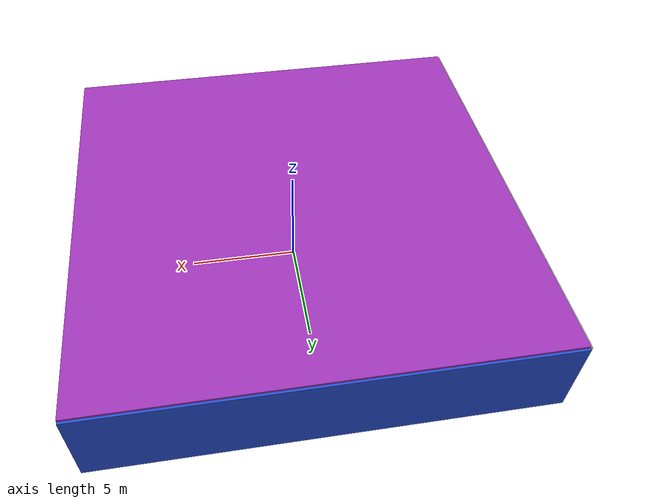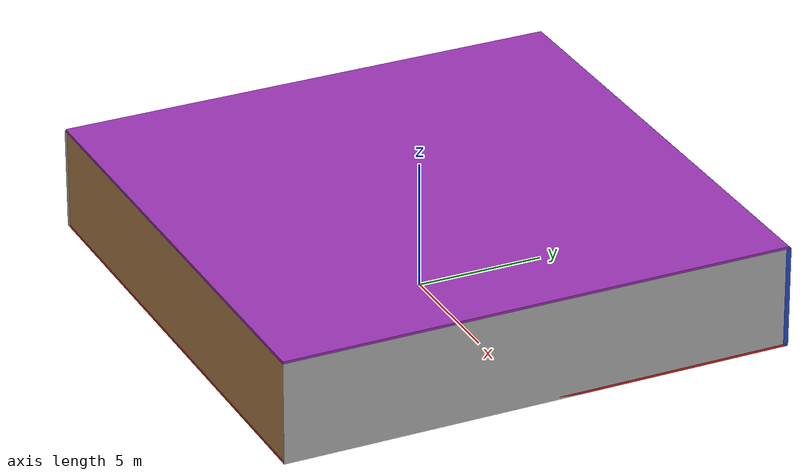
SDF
<sdf version="1.4">
 <world name="default">
  <physics type="ode">
   <max_step_size>0.001</max_step_size>
   <real_time_factor>1</real_time_factor>
   <real_time_update_rate>1000</real_time_update_rate>
   <gravity>0 0 -9.8</gravity>
  </physics>
  <scene><ambient>0.4 0.4 0.4 1</ambient><background>0.7 0.7 0.7 1</background><shadows>1</shadows></scene>
  <model name="Surrounding">
   <static>1</static>
   <link name="Ceiling">
    <collision name="Ceiling_Collision"><geometry><box><size>20 20 0.1</size></box></geometry></collision>
    <visual name="Ceiling_Visual">
     <geometry><box><size>20 20 0.1</size></box></geometry>
     <material>
      <script><uri>file://media/materials/scripts/gazebo.material</uri><name>Gazebo/PurpleGlow</name></script>
     </material>
    </visual>
    <pose>0 0 4.05 0 0 0</pose>
   </link>
   <link name="Wall_South">
    <collision name="Wall_South_Collision">
     <geometry><box><size>20 0 4</size></box></geometry>
     <pose>0 0 2 0 -0 0</pose>
    </collision>
    <visual name="Wall_South_Visual">
     <pose>0 0 2 0 -0 0</pose>
     <geometry><box><size>20 0 4</size></box></geometry>
     <material>
      <script><uri>file://media/materials/scripts/gazebo.material</uri><name>Gazebo/WoodPallet</name></script>
     </material>
    </visual>
    <velocity_decay><linear>0</linear><angular>0</angular></velocity_decay>
    <pose>0 -10 0 0 -0 0</pose>
   </link>
   <link name="Wall_East">
    <collision name="Wall_21_Collision">
     <geometry><box><size>20 0 4</size></box></geometry>
     <pose>0 0 2 0 -0 0</pose>
    </collision>
    <visual name="Wall_21_Visual">
     <pose>0 0 2 0 -0 0</pose>
     <geometry><box><size>20 0 4</size></box></geometry>
     <material>
      <script><uri>file://media/materials/scripts/gazebo.material</uri><name>Gazebo/JointAnchor</name></script>
     </material>
    </visual>
    <velocity_decay><linear>0</linear><angular>0</angular></velocity_decay>
    <pose>10 0 0 0 -0 1.5708</pose>
   </link>
   <link name="Wall_North">
    <collision name="Wall_22_Collision">
     <geometry><box><size>20 0.2 4</size></box></geometry>
     <pose>0 0 2 0 -0 0</pose>
    </collision>
    <visual name="Wall_22_Visual">
     <pose>0 0 2 0 -0 0</pose>
     <geometry><box><size>20 0.2 4</size></box></geometry>
     <material>
      <script><uri>file://media/materials/scripts/gazebo.material</uri><name>Gazebo/BlueGlow</name></script>
     </material>
    </visual>
    <velocity_decay><linear>0</linear><angular>0</angular></velocity_decay>
    <pose>0 10 0 0 -0 0</pose>
   </link>
   <link name="Wall_West">
    <collision name="Wall_23_Collision">
     <geometry><box><size>20 0.2 4</size></box></geometry>
     <pose>0 0 2 0 -0 0</pose>
    </collision>
    <visual name="Wall_23_Visual">
     <pose>0 0 2 0 -0 0</pose>
     <geometry><box><size>20 0.2 4</size></box></geometry>
     <material>
      <script><uri>file://media/materials/scripts/gazebo.material</uri><name>Gazebo/CloudySky</name></script>
     </material>
    </visual>
    <velocity_decay><linear>0</linear><angular>0</angular></velocity_decay>
    <pose>-10 0 0 0 0 -1.5708</pose>
   </link>
   <link name="Ground_link">
    <collision name="collision">
     <pose>0 0 .05 0 -0 0</pose>
     <geometry><box><size>20 20 0.1</size></box></geometry>
    </collision>
    <visual name="visual">
     <pose>0 0 .05 0 -0 0</pose>
     <geometry><box><size>20 20 0.1</size></box></geometry>
     <material>
      <script><uri>file://media/materials/scripts/gazebo.material</uri><name>Gazebo/RedGlow</name></script>
     </material>
    </visual>
   </link>
   <static>1</static>
  </model>
  <spherical_coordinates>
   <surface_model>EARTH_WGS84</surface_model>
   <latitude_deg>0</latitude_deg>
   <longitude_deg>0</longitude_deg>
   <elevation>0</elevation>
   <heading_deg>0</heading_deg>
  </spherical_coordinates>
  <light name="lightball_0" type="diffuse">
   <diffuse>0.8 0.8 0.8 1</diffuse>
   <specular>0.2 0.2 0.2 1</specular>
   <attenuation>
    <range>100</range>
    <constant>0.7</constant>
    <linear>0.01</linear>
    <quadratic>0.001</quadratic>
   </attenuation>
   <direction>-0.5 0.1 -0.9</direction>
   <pose>9.79101949189 4.8615946956 2.18128019921 0 0 0</pose>
  </light>
  <light name="lightball_1" type="diffuse">
   <diffuse>0.8 0.8 0.8 1</diffuse>
   <specular>0.2 0.2 0.2 1</specular>
   <attenuation>
    <range>100</range>
    <constant>0.7</constant>
    <linear>0.01</linear>
    <quadratic>0.001</quadratic>
   </attenuation>
   <direction>-0.5 0.1 -0.9</direction>
   <pose>3.98045950441 3.77709403558 2.87721741011 0 0 0</pose>
  </light>
  <light name="lightball_2" type="diffuse">
   <diffuse>0.8 0.8 0.8 1</diffuse>
   <specular>0.2 0.2 0.2 1</specular>
   <attenuation>
    <range>100</range>
    <constant>0.7</constant>
    <linear>0.01</linear>
    <quadratic>0.001</quadratic>
   </attenuation>
   <direction>-0.5 0.1 -0.9</direction>
   <pose>-8.25953178933 3.25933107252 2.92566693047 0 0 0</pose>
  </light>
  <include><uri>model://cabinet</uri><pose>-8.01585053817 8.22155663454 0 0 0 2.75123411307</pose></include>
  <include><uri>model://cabinet</uri><pose>6.85764808463 0.893548868476 0 0 0 0.415508101306</pose></include>
  <include><uri>model://cabinet</uri><pose>7.27731597529 6.85970858455 0 0 0 1.91488550446</pose></include>
 </world>
</sdf>

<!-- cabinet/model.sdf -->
<sdf version="1.5">
  <model name="cabinet">
    <static>true</static>
    <link name="cabinet_bottom_plate">
      <inertial>
        <pose>0 0 -1 0 0 0</pose>
        <inertia>
          <ixx>2.050000</ixx>
          <ixy>0</ixy>
          <ixz>0</ixz>
          <iyy>2.050000</iyy>
          <iyz>0</iyz>
          <izz>2.050000</izz>
        </inertia>
        <mass>25.000000</mass>
      </inertial>
      <collision name="cabinet_bottom_plate_geom">
        <pose>0 0 0.010000 0 0 0</pose>
        <geometry>
          <box>
            <size>0.450000 0.450000 0.020000</size>
          </box>
        </geometry>
      </collision>
      <visual name="cabinet_bottom_plate_geom_visual">
        <pose>0 0 0.010000 0 0 0</pose>
        <geometry>
          <box>
            <size>0.450000 0.450000 0.020000</size>
          </box>
        </geometry>
        <material>
          <script>
            <uri>model://media/materials/scripts/gazebo.material</uri>
            <name>Gazebo/Wood</name>
          </script>
        </material>
      </visual>
      <collision name="cabinet_bottom_plate_geom_cabinet_back_plate">
        <pose>0.235000 0 0.510000 0 0 0</pose>
        <geometry>
          <box>
            <size>0.020000 0.450000 1.020000</size>
          </box>
        </geometry>
      </collision>
      <visual name="cabinet_bottom_plate_geom_cabinet_back_plate_visual">
        <pose>0.235000 0 0.510000 0 0 0</pose>
        <geometry>
          <box>
            <size>0.020000 0.450000 1.020000</size>
          </box>
        </geometry>
        <material>
          <script>
            <uri>model://media/materials/scripts/gazebo.material</uri>
            <name>Gazebo/Wood</name>
          </script>
        </material>
      </visual>
      <collision name="cabinet_bottom_plate_geom_cabinet_left_plate">
        <pose>0 0.235000 0.510000 0 0 0</pose>
        <geometry>
          <box>
            <size>0.450000 0.020000 1.020000</size>
          </box>
        </geometry>
      </collision>
      <visual name="cabinet_bottom_plate_geom_cabinet_left_plate_visual">
        <pose>0 0.235000 0.510000 0 0 0</pose>
        <geometry>
          <box>
            <size>0.450000 0.020000 1.020000</size>
          </box>
        </geometry>
        <material>
          <script>
            <uri>model://media/materials/scripts/gazebo.material</uri>
            <name>Gazebo/Wood</name>
          </script>
        </material>
      </visual>
      <collision name="cabinet_bottom_plate_geom_cabinet_middle_plate">
        <pose>0 0 0.510000 0 0 0</pose>
        <geometry>
          <box>
            <size>0.450000 0.450000 0.020000</size>
          </box>
        </geometry>
      </collision>
      <visual name="cabinet_bottom_plate_geom_cabinet_middle_plate_visual">
        <pose>0 0 0.510000 0 0 0</pose>
        <geometry>
          <box>
            <size>0.450000 0.450000 0.020000</size>
          </box>
        </geometry>
        <material>
          <script>
            <uri>model://media/materials/scripts/gazebo.material</uri>
            <name>Gazebo/Wood</name>
          </script>
        </material>
      </visual>
      <collision name="cabinet_bottom_plate_geom_cabinet_right_plate">
        <pose>0 -0.235000 0.510000 0 0 0</pose>
        <geometry>
          <box>
            <size>0.450000 0.020000 1.020000</size>
          </box>
        </geometry>
      </collision>
      <visual name="cabinet_bottom_plate_geom_cabinet_right_plate_visual">
        <pose>0 -0.235000 0.510000 0 0 0</pose>
        <geometry>
          <box>
            <size>0.450000 0.020000 1.020000</size>
          </box>
        </geometry>
        <material>
          <script>
            <uri>model://media/materials/scripts/gazebo.material</uri>
            <name>Gazebo/Wood</name>
          </script>
        </material>
      </visual>
      <collision name="cabinet_bottom_plate_geom_cabinet_top_plate">
        <pose>0 0 1.010000 0 0 0</pose>
        <geometry>
          <box>
            <size>0.450000 0.450000 0.020000</size>
          </box>
        </geometry>
      </collision>
      <visual name="cabinet_bottom_plate_geom_cabinet_top_plate_visual">
        <pose>0 0 1.010000 0 0 0</pose>
        <geometry>
          <box>
            <size>0.450000 0.450000 0.020000</size>
          </box>
        </geometry>
        <material>
          <script>
            <uri>model://media/materials/scripts/gazebo.material</uri>
            <name>Gazebo/Wood</name>
          </script>
        </material>
      </visual>
    </link>
  </model>
</sdf>
